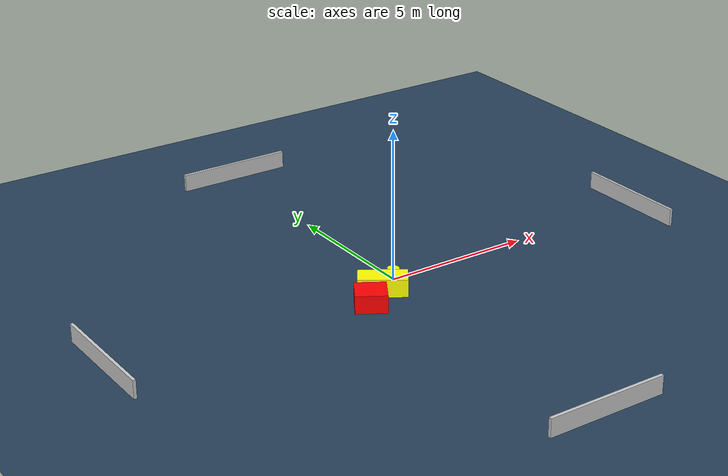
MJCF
<?xml version="1.0" ?>
<mujoco model="generated_environment">
  <option timestep="0.01" integrator="RK4" cone="elliptic"/>
  <default>
    <geom density="1"/>
  </default>
  <asset>
    <texture builtin="gradient" height="3072" name="skybox" rgb1="0.3 0.5 0.7" rgb2="0 0 0" type="skybox" width="512"/>
    <texture builtin="checker" height="300" name="groundplane" rgb1="0.2 0.3 0.4" rgb2="0.1 0.2 0.3" type="2d" width="300"/>
    <material name="groundplane" reflectance="0.2" texrepeat="5 5" texture="groundplane"/>
  </asset>
  <worldbody>
    <light dir="0 0 -1" directional="true" pos="0 0 1.5"/>
    <geom condim="3" friction="0.5 0.005 0.001" material="groundplane" name="floor" pos="0 0 0" size="0 0 0.05" type="plane"/>
    <body name="walls">
      <geom name="wall_1" condim="4" pos="-10.0 0.0 0.3" rgba="0.800000011920929 0.800000011920929 0.800000011920929 1.0" size="0.05 2.0 0.3" type="box"/>
      <geom name="wall_2" condim="4" pos="10.0 0.0 0.3" rgba="0.800000011920929 0.800000011920929 0.800000011920929 1.0" size="0.05 2.0 0.3" type="box"/>
      <geom name="wall_3" condim="4" pos="0.0 -10.0 0.3" rgba="0.800000011920929 0.800000011920929 0.800000011920929 1.0" size="2.0 0.05 0.3" type="box"/>
      <geom name="wall_4" condim="4" pos="0.0 10.0 0.3" rgba="0.800000011920929 0.800000011920929 0.800000011920929 1.0" size="2.0 0.05 0.3" type="box"/>
    </body>
    <body name="robot">
      <joint name="joint_x" type="slide" pos="0 0 0" axis="1 0 0"/>
      <joint name="joint_y" type="slide" pos="0 0 0" axis="0 1 0"/>
      <geom name="robot" type="cylinder" pos="0.0 0.0 0.2" size="0.2 0.2 0.0" mass="5.0" friction="1.0 0.005 0.0001" condim="4" rgba="1.0 1.0 0.0 1.0"/>
    </body>
    <body name="obstacle_1_movable">
      <geom name="obstacle_1_movable" condim="4" pos="-0.774559506731553 -0.5376496677055951 0.3" euler="0 0 146.0535684823759" friction="0.0 0.005 0.001" rgba="1.0 1.0 0.0 1.0" size="0.7878741129598339 0.3738788013921436 0.3" type="box" mass="0.1"/>
      <joint type="free"/>
    </body>
    <body name="obstacle_2_static">
      <geom name="obstacle_2_static" condim="4" pos="-1.638666750125894 -1.1440126494943725 0.3" euler="0 0 148.7033081061257" friction="0.0 0.005 0.001" rgba="1.0 0.0 0.0 1.0" size="0.5062795892793053 0.4751444230449318 0.3" type="box"/>
    </body>
  </worldbody>
  <actuator>
    <motor name="actuator_x" joint="joint_x" gear="1" ctrlrange="-1 1"/>
    <motor name="actuator_y" joint="joint_y" gear="1" ctrlrange="-1 1"/>
  </actuator>
</mujoco>
